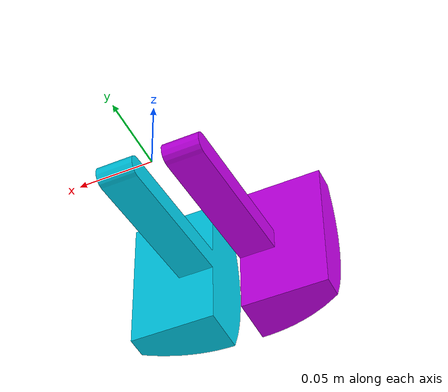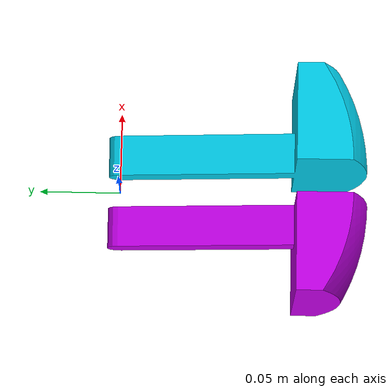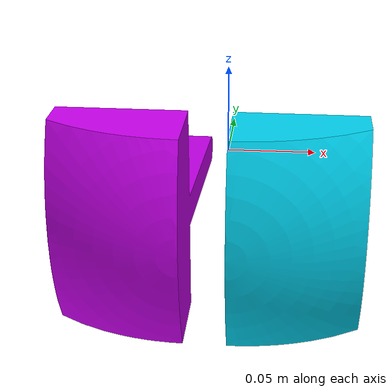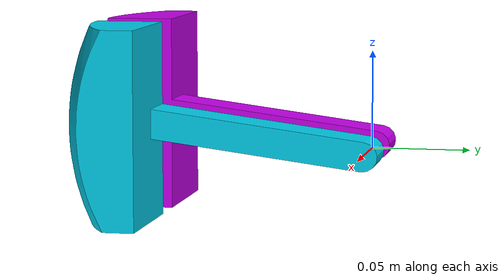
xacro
<?xml version="1.0" encoding="utf-8"?>

<robot xmlns:xacro="http://www.ros.org/wiki/xacro" name="mugatu_urdf">

  <link name="base_link">
    <inertial>
      <origin xyz="-0.040241 -0.11526 0.01316" rpy="0 0 0" />
      <mass value="0.37704" />
      <inertia ixx="0.00079734" ixy="-3.35E-05" ixz="5.6203E-06" iyy="0.00068444" iyz="2.6321E-05"
        izz="0.00045785" />
    </inertial>
    <visual>
      <origin xyz="0 0 0" rpy="0 0 0" />
      <geometry>
        <mesh filename="package://my_robot/meshes/base_link.STL" />
      </geometry>
      <material name="baselink">
        <color rgba="0.79216 0 0.93333 1" />
      </material>
    </visual>
    <collision>
      <origin xyz="0 0 0" rpy="0 0 0" />
      <geometry>
        <mesh filename="package://my_robot/meshes/base_link.STL" />
      </geometry>

    </collision>
  </link>

  <link name="Empty_Link">
    <inertial>
      <origin xyz="0.040241 -0.11526 0.01316" rpy="0 0 0" />
      <mass value="0.37704" />
      <inertia ixx="0.00079734" ixy="3.35E-05" ixz="-5.6203E-06" iyy="0.00068444" iyz="2.6321E-05"
        izz="0.00045785" />
    </inertial>
    <visual>
      <origin xyz="0 0 0" rpy="0 0 0" />
      <geometry>
        <mesh filename="package://my_robot/meshes/Empty_Link.STL" />
      </geometry>
      <material name="emptylink">
        <color rgba="0 0.81961 0.93333 1" />
      </material>
    </visual>
    <collision>
      <origin xyz="0 0 0" rpy="0 0 0" />
      <geometry>
        <mesh filename="package://my_robot/meshes/Empty_Link.STL" />
      </geometry>

    </collision>
  </link>

  <joint name="hip_joint" type="revolute">
    <origin xyz="0 0 0" rpy="0 0 0" />
    <parent link="base_link" />
    <child link="Empty_Link" />
    <axis xyz="-1 0 0" />
    <limit lower="-0.36" upper="0.36" effort="100" velocity="31.4" />
  </joint>

  <transmission name="hip_joint_transmission">
    <type>transmission_interface/SimpleTransmission</type>
    <joint name="hip_joint">
      <hardwareInterface>hardware_interface/EffortJointInterface</hardwareInterface>
    </joint>
    <actuator name="hip_joint_motor">
      <hardwareInterface>hardware_interface/EffortJointInterface</hardwareInterface>
      <mechanicalReduction>1</mechanicalReduction>
    </actuator>
  </transmission>

  <gazebo>
    <plugin name="gazebo_ros_control" filename="libgazebo_ros_control.so">
      <robotNamespace>/mugatu_urdf</robotNamespace>
    </plugin>
  </gazebo>

  <gazebo reference="base_link">
    <mu1>0.5</mu1> <!-- Friction coefficient in the first direction -->
    <mu2>0.5</mu2> <!-- Friction coefficient in the second direction -->
    <slip1>0.5</slip1> <!-- Slipperiness in the first direction -->
    <slip2>0.5</slip2> <!-- Slipperiness in the second direction -->
  </gazebo>

  <gazebo reference="Empty_Link">
    <mu1>0.5</mu1> <!-- Friction coefficient in the first direction -->
    <mu2>0.5</mu2> <!-- Friction coefficient in the second direction -->
    <slip1>0.5</slip1> <!-- Slipperiness in the first direction -->
    <slip2>0.5</slip2> <!-- Slipperiness in the second direction -->
  </gazebo>

</robot>
